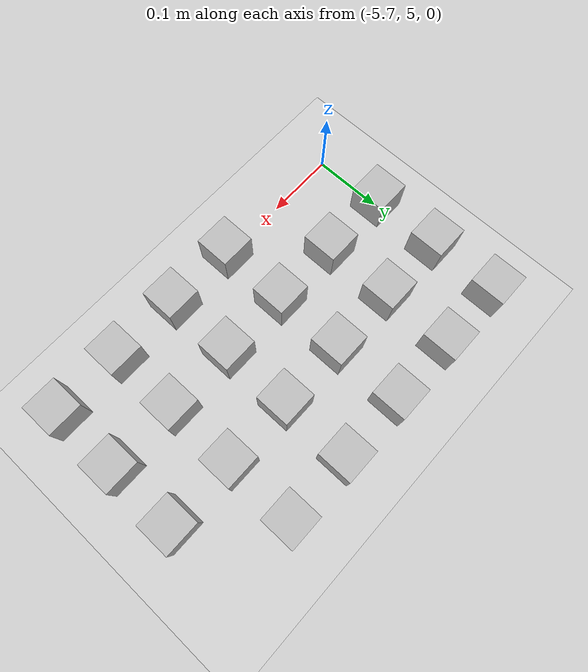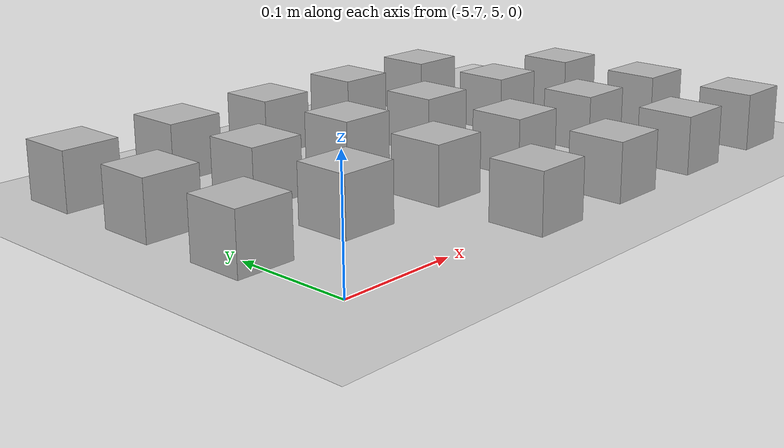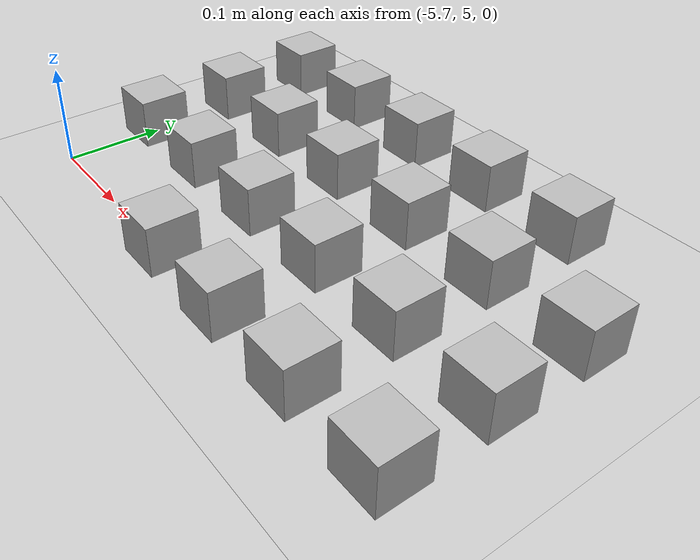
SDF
<sdf version="5.1">
 <world name="default">
  <model name="ground_plane">
   <static>1</static>
   <link name="link">
    <collision name="collision">
     <geometry><plane><normal>0 0 1</normal><size>100 100</size></plane></geometry>
     <surface><friction><ode><mu>100</mu><mu2>50</mu2></ode></friction></surface>
    </collision>
    <visual name="visual">
     <cast_shadows>0</cast_shadows>
     <geometry><plane><normal>0 0 1</normal><size>100 100</size></plane></geometry>
     <material>
      <script><uri>file://media/materials/scripts/gazebo.material</uri><name>Gazebo/Grey</name></script>
     </material>
    </visual>
   </link>
  </model>
  <model name="at2">
   <static>0</static>
   <link name="link">
    <inertial>
     <mass>0.01</mass>
     <inertia><ixx>4e-05</ixx><ixy>0</ixy><ixz>0</ixz><iyy>4e-05</iyy><iyz>0</iyz><izz>4e-05</izz></inertia>
    </inertial>
    <visual name="visual">
     <geometry><box><size>0.05 0.05 0.05</size></box></geometry>
     <material>
      <script>
       <uri>model://at0/materials/scripts</uri>
       <uri>model://at0/materials/textures</uri>
       <name>at0/Diffuse</name>
      </script>
     </material>
    </visual>
    <collision name="collision">
     <geometry><box><size>0.05 0.05 0.05</size></box></geometry>
     <surface><friction><ode><mu>0.8</mu><mu2>0.7</mu2></ode></friction></surface>
    </collision>
   </link>
   <pose>-5.5 5.0 0.025 0 -0 0</pose>
  </model>
  <model name="at3">
   <static>0</static>
   <link name="link">
    <inertial>
     <mass>0.01</mass>
     <inertia><ixx>4e-05</ixx><ixy>0</ixy><ixz>0</ixz><iyy>4e-05</iyy><iyz>0</iyz><izz>4e-05</izz></inertia>
    </inertial>
    <visual name="visual">
     <geometry><box><size>0.05 0.05 0.05</size></box></geometry>
     <material>
      <script>
       <uri>model://at0/materials/scripts</uri>
       <uri>model://at0/materials/textures</uri>
       <name>at0/Diffuse</name>
      </script>
     </material>
    </visual>
    <collision name="collision">
     <geometry><box><size>0.05 0.05 0.05</size></box></geometry>
     <surface><friction><ode><mu>0.8</mu><mu2>0.7</mu2></ode></friction></surface>
    </collision>
   </link>
   <pose>-5.4 5.0 0.025 0 -0 0</pose>
  </model>
  <model name="at4">
   <static>0</static>
   <link name="link">
    <inertial>
     <mass>0.01</mass>
     <inertia><ixx>4e-05</ixx><ixy>0</ixy><ixz>0</ixz><iyy>4e-05</iyy><iyz>0</iyz><izz>4e-05</izz></inertia>
    </inertial>
    <visual name="visual">
     <geometry><box><size>0.05 0.05 0.05</size></box></geometry>
     <material>
      <script>
       <uri>model://at0/materials/scripts</uri>
       <uri>model://at0/materials/textures</uri>
       <name>at0/Diffuse</name>
      </script>
     </material>
    </visual>
    <collision name="collision">
     <geometry><box><size>0.05 0.05 0.05</size></box></geometry>
     <surface><friction><ode><mu>0.8</mu><mu2>0.7</mu2></ode></friction></surface>
    </collision>
   </link>
   <pose>-5.3 5.0 0.025 0 -0 0</pose>
  </model>
  <model name="at5">
   <static>0</static>
   <link name="link">
    <inertial>
     <mass>0.01</mass>
     <inertia><ixx>4e-05</ixx><ixy>0</ixy><ixz>0</ixz><iyy>4e-05</iyy><iyz>0</iyz><izz>4e-05</izz></inertia>
    </inertial>
    <visual name="visual">
     <geometry><box><size>0.05 0.05 0.05</size></box></geometry>
     <material>
      <script>
       <uri>model://at0/materials/scripts</uri>
       <uri>model://at0/materials/textures</uri>
       <name>at0/Diffuse</name>
      </script>
     </material>
    </visual>
    <collision name="collision">
     <geometry><box><size>0.05 0.05 0.05</size></box></geometry>
     <surface><friction><ode><mu>0.8</mu><mu2>0.7</mu2></ode></friction></surface>
    </collision>
   </link>
   <pose>-5.2 5.0 0.025 0 -0 0</pose>
  </model>
  <model name="at8">
   <static>0</static>
   <link name="link">
    <inertial>
     <mass>0.01</mass>
     <inertia><ixx>4e-05</ixx><ixy>0</ixy><ixz>0</ixz><iyy>4e-05</iyy><iyz>0</iyz><izz>4e-05</izz></inertia>
    </inertial>
    <visual name="visual">
     <geometry><box><size>0.05 0.05 0.05</size></box></geometry>
     <material>
      <script>
       <uri>model://at0/materials/scripts</uri>
       <uri>model://at0/materials/textures</uri>
       <name>at0/Diffuse</name>
      </script>
     </material>
    </visual>
    <collision name="collision">
     <geometry><box><size>0.05 0.05 0.05</size></box></geometry>
     <surface><friction><ode><mu>0.8</mu><mu2>0.7</mu2></ode></friction></surface>
    </collision>
   </link>
   <pose>-5.7 5.1 0.025 0 -0 0</pose>
  </model>
  <model name="at9">
   <static>0</static>
   <link name="link">
    <inertial>
     <mass>0.01</mass>
     <inertia><ixx>4e-05</ixx><ixy>0</ixy><ixz>0</ixz><iyy>4e-05</iyy><iyz>0</iyz><izz>4e-05</izz></inertia>
    </inertial>
    <visual name="visual">
     <geometry><box><size>0.05 0.05 0.05</size></box></geometry>
     <material>
      <script>
       <uri>model://at0/materials/scripts</uri>
       <uri>model://at0/materials/textures</uri>
       <name>at0/Diffuse</name>
      </script>
     </material>
    </visual>
    <collision name="collision">
     <geometry><box><size>0.05 0.05 0.05</size></box></geometry>
     <surface><friction><ode><mu>0.8</mu><mu2>0.7</mu2></ode></friction></surface>
    </collision>
   </link>
   <pose>-5.6 5.1 0.025 0 -0 0</pose>
  </model>
  <model name="at10">
   <static>0</static>
   <link name="link">
    <inertial>
     <mass>0.01</mass>
     <inertia><ixx>4e-05</ixx><ixy>0</ixy><ixz>0</ixz><iyy>4e-05</iyy><iyz>0</iyz><izz>4e-05</izz></inertia>
    </inertial>
    <visual name="visual">
     <geometry><box><size>0.05 0.05 0.05</size></box></geometry>
     <material>
      <script>
       <uri>model://at0/materials/scripts</uri>
       <uri>model://at0/materials/textures</uri>
       <name>at0/Diffuse</name>
      </script>
     </material>
    </visual>
    <collision name="collision">
     <geometry><box><size>0.05 0.05 0.05</size></box></geometry>
     <surface><friction><ode><mu>0.8</mu><mu2>0.7</mu2></ode></friction></surface>
    </collision>
   </link>
   <pose>-5.5 5.1 0.025 0 -0 0</pose>
  </model>
  <model name="at11">
   <static>0</static>
   <link name="link">
    <inertial>
     <mass>0.01</mass>
     <inertia><ixx>4e-05</ixx><ixy>0</ixy><ixz>0</ixz><iyy>4e-05</iyy><iyz>0</iyz><izz>4e-05</izz></inertia>
    </inertial>
    <visual name="visual">
     <geometry><box><size>0.05 0.05 0.05</size></box></geometry>
     <material>
      <script>
       <uri>model://at0/materials/scripts</uri>
       <uri>model://at0/materials/textures</uri>
       <name>at0/Diffuse</name>
      </script>
     </material>
    </visual>
    <collision name="collision">
     <geometry><box><size>0.05 0.05 0.05</size></box></geometry>
     <surface><friction><ode><mu>0.8</mu><mu2>0.7</mu2></ode></friction></surface>
    </collision>
   </link>
   <pose>-5.4 5.1 0.025 0 -0 0</pose>
  </model>
  <model name="at12">
   <static>0</static>
   <link name="link">
    <inertial>
     <mass>0.01</mass>
     <inertia><ixx>4e-05</ixx><ixy>0</ixy><ixz>0</ixz><iyy>4e-05</iyy><iyz>0</iyz><izz>4e-05</izz></inertia>
    </inertial>
    <visual name="visual">
     <geometry><box><size>0.05 0.05 0.05</size></box></geometry>
     <material>
      <script>
       <uri>model://at0/materials/scripts</uri>
       <uri>model://at0/materials/textures</uri>
       <name>at0/Diffuse</name>
      </script>
     </material>
    </visual>
    <collision name="collision">
     <geometry><box><size>0.05 0.05 0.05</size></box></geometry>
     <surface><friction><ode><mu>0.8</mu><mu2>0.7</mu2></ode></friction></surface>
    </collision>
   </link>
   <pose>-5.3 5.1 0.025 0 -0 0</pose>
  </model>
  <model name="at13">
   <static>0</static>
   <link name="link">
    <inertial>
     <mass>0.01</mass>
     <inertia><ixx>4e-05</ixx><ixy>0</ixy><ixz>0</ixz><iyy>4e-05</iyy><iyz>0</iyz><izz>4e-05</izz></inertia>
    </inertial>
    <visual name="visual">
     <geometry><box><size>0.05 0.05 0.05</size></box></geometry>
     <material>
      <script>
       <uri>model://at0/materials/scripts</uri>
       <uri>model://at0/materials/textures</uri>
       <name>at0/Diffuse</name>
      </script>
     </material>
    </visual>
    <collision name="collision">
     <geometry><box><size>0.05 0.05 0.05</size></box></geometry>
     <surface><friction><ode><mu>0.8</mu><mu2>0.7</mu2></ode></friction></surface>
    </collision>
   </link>
   <pose>-5.2 5.1 0.025 0 -0 0</pose>
  </model>
  <model name="at16">
   <static>0</static>
   <link name="link">
    <inertial>
     <mass>0.01</mass>
     <inertia><ixx>4e-05</ixx><ixy>0</ixy><ixz>0</ixz><iyy>4e-05</iyy><iyz>0</iyz><izz>4e-05</izz></inertia>
    </inertial>
    <visual name="visual">
     <geometry><box><size>0.05 0.05 0.05</size></box></geometry>
     <material>
      <script>
       <uri>model://at0/materials/scripts</uri>
       <uri>model://at0/materials/textures</uri>
       <name>at0/Diffuse</name>
      </script>
     </material>
    </visual>
    <collision name="collision">
     <geometry><box><size>0.05 0.05 0.05</size></box></geometry>
     <surface><friction><ode><mu>0.8</mu><mu2>0.7</mu2></ode></friction></surface>
    </collision>
   </link>
   <pose>-5.7 5.2 0.025 0 -0 0</pose>
  </model>
  <model name="at17">
   <static>0</static>
   <link name="link">
    <inertial>
     <mass>0.01</mass>
     <inertia><ixx>4e-05</ixx><ixy>0</ixy><ixz>0</ixz><iyy>4e-05</iyy><iyz>0</iyz><izz>4e-05</izz></inertia>
    </inertial>
    <visual name="visual">
     <geometry><box><size>0.05 0.05 0.05</size></box></geometry>
     <material>
      <script>
       <uri>model://at0/materials/scripts</uri>
       <uri>model://at0/materials/textures</uri>
       <name>at0/Diffuse</name>
      </script>
     </material>
    </visual>
    <collision name="collision">
     <geometry><box><size>0.05 0.05 0.05</size></box></geometry>
     <surface><friction><ode><mu>0.8</mu><mu2>0.7</mu2></ode></friction></surface>
    </collision>
   </link>
   <pose>-5.6 5.2 0.025 0 -0 0</pose>
  </model>
  <model name="at18">
   <static>0</static>
   <link name="link">
    <inertial>
     <mass>0.01</mass>
     <inertia><ixx>4e-05</ixx><ixy>0</ixy><ixz>0</ixz><iyy>4e-05</iyy><iyz>0</iyz><izz>4e-05</izz></inertia>
    </inertial>
    <visual name="visual">
     <geometry><box><size>0.05 0.05 0.05</size></box></geometry>
     <material>
      <script>
       <uri>model://at0/materials/scripts</uri>
       <uri>model://at0/materials/textures</uri>
       <name>at0/Diffuse</name>
      </script>
     </material>
    </visual>
    <collision name="collision">
     <geometry><box><size>0.05 0.05 0.05</size></box></geometry>
     <surface><friction><ode><mu>0.8</mu><mu2>0.7</mu2></ode></friction></surface>
    </collision>
   </link>
   <pose>-5.5 5.2 0.025 0 -0 0</pose>
  </model>
  <model name="at19">
   <static>0</static>
   <link name="link">
    <inertial>
     <mass>0.01</mass>
     <inertia><ixx>4e-05</ixx><ixy>0</ixy><ixz>0</ixz><iyy>4e-05</iyy><iyz>0</iyz><izz>4e-05</izz></inertia>
    </inertial>
    <visual name="visual">
     <geometry><box><size>0.05 0.05 0.05</size></box></geometry>
     <material>
      <script>
       <uri>model://at0/materials/scripts</uri>
       <uri>model://at0/materials/textures</uri>
       <name>at0/Diffuse</name>
      </script>
     </material>
    </visual>
    <collision name="collision">
     <geometry><box><size>0.05 0.05 0.05</size></box></geometry>
     <surface><friction><ode><mu>0.8</mu><mu2>0.7</mu2></ode></friction></surface>
    </collision>
   </link>
   <pose>-5.4 5.2 0.025 0 -0 0</pose>
  </model>
  <model name="at20">
   <static>0</static>
   <link name="link">
    <inertial>
     <mass>0.01</mass>
     <inertia><ixx>4e-05</ixx><ixy>0</ixy><ixz>0</ixz><iyy>4e-05</iyy><iyz>0</iyz><izz>4e-05</izz></inertia>
    </inertial>
    <visual name="visual">
     <geometry><box><size>0.05 0.05 0.05</size></box></geometry>
     <material>
      <script>
       <uri>model://at0/materials/scripts</uri>
       <uri>model://at0/materials/textures</uri>
       <name>at0/Diffuse</name>
      </script>
     </material>
    </visual>
    <collision name="collision">
     <geometry><box><size>0.05 0.05 0.05</size></box></geometry>
     <surface><friction><ode><mu>0.8</mu><mu2>0.7</mu2></ode></friction></surface>
    </collision>
   </link>
   <pose>-5.3 5.2 0.025 0 -0 0</pose>
  </model>
  <model name="at21">
   <static>0</static>
   <link name="link">
    <inertial>
     <mass>0.01</mass>
     <inertia><ixx>4e-05</ixx><ixy>0</ixy><ixz>0</ixz><iyy>4e-05</iyy><iyz>0</iyz><izz>4e-05</izz></inertia>
    </inertial>
    <visual name="visual">
     <geometry><box><size>0.05 0.05 0.05</size></box></geometry>
     <material>
      <script>
       <uri>model://at0/materials/scripts</uri>
       <uri>model://at0/materials/textures</uri>
       <name>at0/Diffuse</name>
      </script>
     </material>
    </visual>
    <collision name="collision">
     <geometry><box><size>0.05 0.05 0.05</size></box></geometry>
     <surface><friction><ode><mu>0.8</mu><mu2>0.7</mu2></ode></friction></surface>
    </collision>
   </link>
   <pose>-5.2 5.2 0.025 0 -0 0</pose>
  </model>
  <model name="at24">
   <static>0</static>
   <link name="link">
    <inertial>
     <mass>0.01</mass>
     <inertia><ixx>4e-05</ixx><ixy>0</ixy><ixz>0</ixz><iyy>4e-05</iyy><iyz>0</iyz><izz>4e-05</izz></inertia>
    </inertial>
    <visual name="visual">
     <geometry><box><size>0.05 0.05 0.05</size></box></geometry>
     <material>
      <script>
       <uri>model://at0/materials/scripts</uri>
       <uri>model://at0/materials/textures</uri>
       <name>at0/Diffuse</name>
      </script>
     </material>
    </visual>
    <collision name="collision">
     <geometry><box><size>0.05 0.05 0.05</size></box></geometry>
     <surface><friction><ode><mu>0.8</mu><mu2>0.7</mu2></ode></friction></surface>
    </collision>
   </link>
   <pose>-5.7 5.3 0.025 0 -0 0</pose>
  </model>
  <model name="at25">
   <static>0</static>
   <link name="link">
    <inertial>
     <mass>0.01</mass>
     <inertia><ixx>4e-05</ixx><ixy>0</ixy><ixz>0</ixz><iyy>4e-05</iyy><iyz>0</iyz><izz>4e-05</izz></inertia>
    </inertial>
    <visual name="visual">
     <geometry><box><size>0.05 0.05 0.05</size></box></geometry>
     <material>
      <script>
       <uri>model://at0/materials/scripts</uri>
       <uri>model://at0/materials/textures</uri>
       <name>at0/Diffuse</name>
      </script>
     </material>
    </visual>
    <collision name="collision">
     <geometry><box><size>0.05 0.05 0.05</size></box></geometry>
     <surface><friction><ode><mu>0.8</mu><mu2>0.7</mu2></ode></friction></surface>
    </collision>
   </link>
   <pose>-5.6 5.3 0.025 0 -0 0</pose>
  </model>
  <model name="at26">
   <static>0</static>
   <link name="link">
    <inertial>
     <mass>0.01</mass>
     <inertia><ixx>4e-05</ixx><ixy>0</ixy><ixz>0</ixz><iyy>4e-05</iyy><iyz>0</iyz><izz>4e-05</izz></inertia>
    </inertial>
    <visual name="visual">
     <geometry><box><size>0.05 0.05 0.05</size></box></geometry>
     <material>
      <script>
       <uri>model://at0/materials/scripts</uri>
       <uri>model://at0/materials/textures</uri>
       <name>at0/Diffuse</name>
      </script>
     </material>
    </visual>
    <collision name="collision">
     <geometry><box><size>0.05 0.05 0.05</size></box></geometry>
     <surface><friction><ode><mu>0.8</mu><mu2>0.7</mu2></ode></friction></surface>
    </collision>
   </link>
   <pose>-5.5 5.3 0.025 0 -0 0</pose>
  </model>
  <model name="at27">
   <static>0</static>
   <link name="link">
    <inertial>
     <mass>0.01</mass>
     <inertia><ixx>4e-05</ixx><ixy>0</ixy><ixz>0</ixz><iyy>4e-05</iyy><iyz>0</iyz><izz>4e-05</izz></inertia>
    </inertial>
    <visual name="visual">
     <geometry><box><size>0.05 0.05 0.05</size></box></geometry>
     <material>
      <script>
       <uri>model://at0/materials/scripts</uri>
       <uri>model://at0/materials/textures</uri>
       <name>at0/Diffuse</name>
      </script>
     </material>
    </visual>
    <collision name="collision">
     <geometry><box><size>0.05 0.05 0.05</size></box></geometry>
     <surface><friction><ode><mu>0.8</mu><mu2>0.7</mu2></ode></friction></surface>
    </collision>
   </link>
   <pose>-5.4 5.3 0.025 0 -0 0</pose>
  </model>
  <model name="at28">
   <static>0</static>
   <link name="link">
    <inertial>
     <mass>0.01</mass>
     <inertia><ixx>4e-05</ixx><ixy>0</ixy><ixz>0</ixz><iyy>4e-05</iyy><iyz>0</iyz><izz>4e-05</izz></inertia>
    </inertial>
    <visual name="visual">
     <geometry><box><size>0.05 0.05 0.05</size></box></geometry>
     <material>
      <script>
       <uri>model://at0/materials/scripts</uri>
       <uri>model://at0/materials/textures</uri>
       <name>at0/Diffuse</name>
      </script>
     </material>
    </visual>
    <collision name="collision">
     <geometry><box><size>0.05 0.05 0.05</size></box></geometry>
     <surface><friction><ode><mu>0.8</mu><mu2>0.7</mu2></ode></friction></surface>
    </collision>
   </link>
   <pose>-5.3 5.3 0.025 0 -0 0</pose>
  </model>
  <model name="at56">
   <static>0</static>
   <link name="link">
    <inertial>
     <mass>0.01</mass>
     <inertia><ixx>4e-05</ixx><ixy>0</ixy><ixz>0</ixz><iyy>4e-05</iyy><iyz>0</iyz><izz>4e-05</izz></inertia>
    </inertial>
    <visual name="visual">
     <geometry><box><size>0.05 0.05 0.05</size></box></geometry>
     <material>
      <script>
       <uri>model://at0/materials/scripts</uri>
       <uri>model://at0/materials/textures</uri>
       <name>at0/Diffuse</name>
      </script>
     </material>
    </visual>
    <collision name="collision">
     <geometry><box><size>0.05 0.05 0.05</size></box></geometry>
     <surface><friction><ode><mu>0.8</mu><mu2>0.7</mu2></ode></friction></surface>
    </collision>
   </link>
   <pose>-5.7 5.3 0.025 0 -0 0</pose>
  </model>
 </world>
</sdf>
